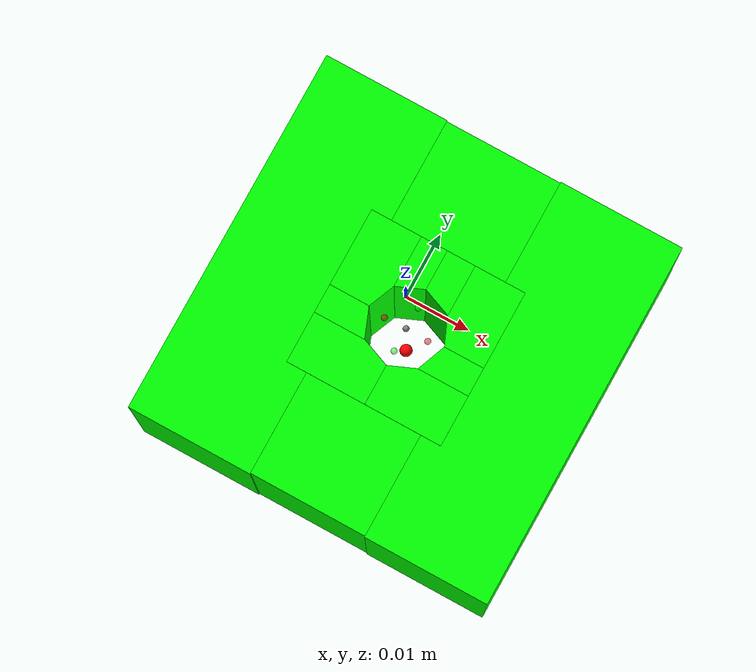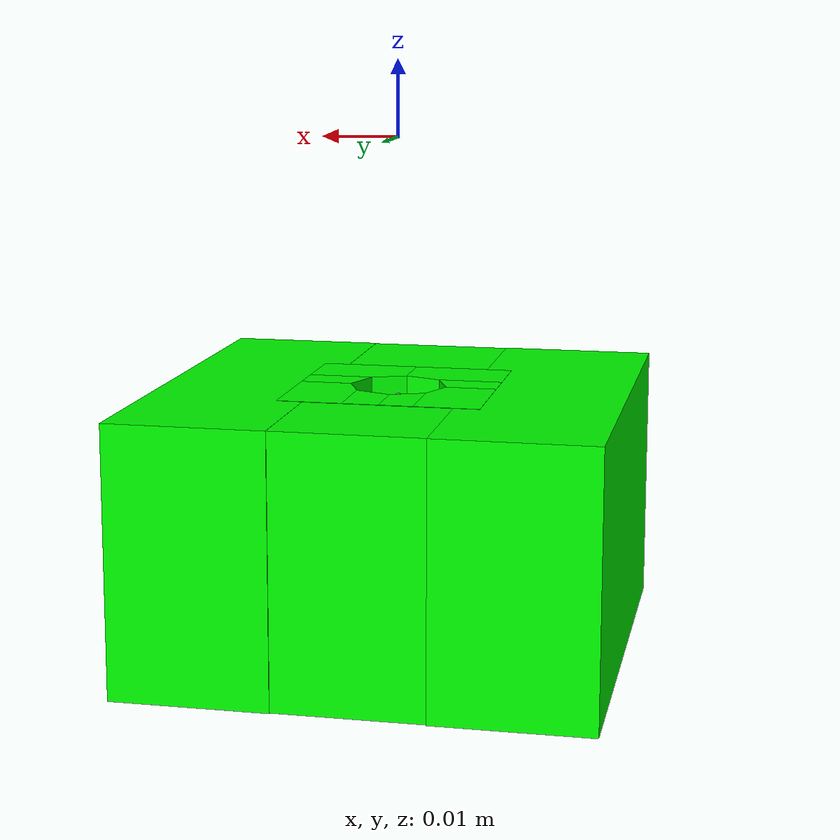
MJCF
<mujoco model="hole">

 <asset>
			<mesh file="meshes/object/Sphere_hull_1.stl" name="1" scale="2.6 2.6 3.5" />
			<mesh file="meshes/object/Cube_hull_1.stl" name="2" scale="2.6 2.6 3.5" />
			<mesh file="meshes/object/Cube_hull_2.stl" name="3" scale="2.6 2.6 3.5" />
			<mesh file="meshes/object/Cube_hull_3.stl" name="4" scale="2.6 2.6 3.5" />
			<mesh file="meshes/object/Cube_hull_4.stl" name="5" scale="2.6 2.6 3.5" />
			<mesh file="meshes/object/Cube_hull_5.stl" name="6" scale="2.6 2.6 3.5" />
			<mesh file="meshes/object/Cube_hull_6.stl" name="7" scale="2.6 2.6 3.5" />
			<mesh file="meshes/object/Cube_hull_7.stl" name="8" scale="2.6 2.6 3.5" />
			<mesh file="meshes/object/Cube_hull_8.stl" name="9" scale="2.6 2.6 3.5" />
			<mesh file="meshes/object/Cube_001_hull_1.stl" name="10" scale="2.6 2.0 3.45" />
			<mesh file="meshes/object/Cube_002_hull_1.stl" name="11" scale="2.6 2.0 3.45" />
			<mesh file="meshes/object/Cube_003_hull_1.stl" name="12" scale="2.0 2.0 3.4" />
			<mesh file="meshes/object/Cube_004_hull_1.stl" name="13" scale="2.0 2.0 3.4" />

	<texture file="../textures/ceramic.png" name="tex-ceramic"/>
    <material name="ceramic" reflectance="0.5" texrepeat="1 1" texture="tex-ceramic" texuniform="true"/>
  </asset>

  <worldbody>

    <body>
		<body name="object">
		<geom pos="0 0 -0.05" mesh="2" type="mesh" solimp="0.998 0.998 0.001" solref="0.001 1" density="6700" friction="0.95 0.3 0.1" material="ceramic" group="1" condim="4" rgba="0 1 0 1"  />
		<geom pos="0 0 -0.05" mesh="3" type="mesh" solimp="0.998 0.998 0.001" solref="0.001 1" density="6700" friction="0.95 0.3 0.1" material="ceramic" group="1" condim="4" rgba="0 1 0 1"  />
		<geom pos="0 0 -0.05" mesh="4" type="mesh" solimp="0.998 0.998 0.001" solref="0.001 1" density="6700" friction="0.95 0.3 0.1" material="ceramic" group="1" condim="4" rgba="0 1 0 1"  />
		<geom pos="0 0 -0.05" mesh="5" type="mesh" solimp="0.998 0.998 0.001" solref="0.001 1" density="6700" friction="0.95 0.3 0.1" material="ceramic" group="1" condim="4" rgba="0 1 0 1"  />
		<geom pos="0 0 -0.05" mesh="6" type="mesh" solimp="0.998 0.998 0.001" solref="0.001 1" density="6700" friction="0.95 0.3 0.1" material="ceramic" group="1" condim="4" rgba="0 1 0 1"  />
		<geom pos="0 0 -0.05" mesh="7" type="mesh" solimp="0.998 0.998 0.001" solref="0.001 1" density="6700" friction="0.95 0.3 0.1" material="ceramic" group="1" condim="4" rgba="0 1 0 1"  />
		<geom pos="0 0 -0.05" mesh="8" type="mesh" solimp="0.998 0.998 0.001" solref="0.001 1" density="6700" friction="0.95 0.3 0.1" material="ceramic" group="1" condim="4" rgba="0 1 0 1"  />
		<geom pos="0 0 -0.05" mesh="9" type="mesh" solimp="0.998 0.998 0.001" solref="0.001 1" density="6700" friction="0.95 0.3 0.1" material="ceramic" group="1" condim="4" rgba="0 1 0 1"  />
		<geom pos="0 0 -0.05" mesh="10" type="mesh" solimp="0.998 0.998 0.001" solref="0.001 1" density="6700" friction="0.95 0.3 0.1" material="ceramic" group="1" condim="4" rgba="0 1 0 1"  />
		<geom pos="0 0 -0.05" mesh="11" type="mesh" solimp="0.998 0.998 0.001" solref="0.001 1" density="6700" friction="0.95 0.3 0.1" material="ceramic" group="1" condim="4" rgba="0 1 0 1"  />
		<geom pos="0 0 -0.05" mesh="12" type="mesh" solimp="0.998 0.998 0.001" solref="0.001 1" density="6700" friction="0.95 0.3 0.1" material="ceramic" group="1" condim="4" rgba="0 1 0 1"  />
		<geom pos="0 0 -0.05" mesh="13" type="mesh" solimp="0.998 0.998 0.001" solref="0.001 1" density="6700" friction="0.95 0.3 0.1" material="ceramic" group="1" condim="4" rgba="0 1 0 1"  />

<!--		sphere above the hole (grey)-->
		<site name="middle_cylinder" pos="0.000 0.000 0.0" size="0.0002"/>

<!--		red dot inside the hole	-->
		<body name="hole" pos="0.00 0.000 -0.06">
			<site name="surface" pos="0.0 0.0 0.026" size="0.0005" type="sphere" group="1"/>
			<site name="d_x" pos="0.0037 0 0.025" size="0.0005" rgba="1 0 0 0.5" type="sphere" group="1"/>
			<site name="d_y" pos="0 0.0037 0.025" size="0.0005" rgba="0 1 0 0.5" type="sphere" group="1"/>
			<site name="d_mx" pos="-0.0037 0 0.025" size="0.0005" rgba="1 0 0 0.5" type="sphere" group="1"/>
			<site name="d_my" pos="0 -0.0037 0.025" size="0.0005" rgba="0 1 0 0.5" type="sphere" group="1"/>
			<geom density="3000" friction="1.0 0.005 0.0001" group="1" name="hole"  rgba="1 0 0 1" size="0.001 0.001 0.001" type="sphere" />
		</body>
		</body>

      <body name="visual">
      </body>

    </body>

  </worldbody>
</mujoco>
